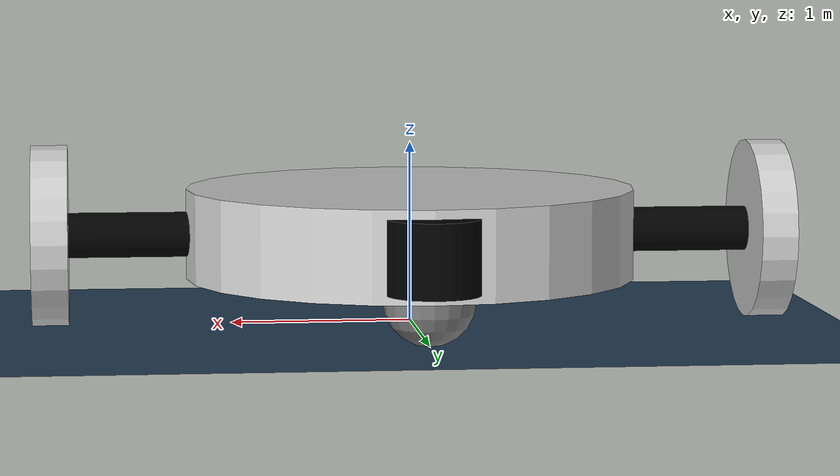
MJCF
<mujoco model="Mobile Robot">

	<asset>
		<texture name="grid" type="2d" builtin="checker" width="512" height="512" rgb1=".1 .2 .3" rgb2=".2 .3 .4"/>
		<material name="grid" texture="grid" texrepeat="1 1" texuniform="true" reflectance=".2"/>
	</asset>

	<worldbody>
		<geom name="ground" type="plane" size="0 0 0.1" material="grid"/>
		<light directional="false" active="true" pos="0 0 10" dir="0 0 -1"/>

		<body pos="0 0 0.5">
			<freejoint/>
			<geom name="mainBody" type="cylinder" size="1.25 0.25" rgba="0.8 0.8 0.8 1.0"/>
			<geom type="sphere" size="0.25" pos="0 1 -0.25"/>
			<geom type="sphere" size="0.25" pos="0 -1 -0.25"/>
			<geom type="cylinder" size="0.25" fromto="0 1.2 -0.2 0 1.2 0.2" rgba="0.0 0.0 0.0 1.0"/>

			<body pos="0 0 0">
				<joint name="rightWheel" type="hinge" pos="0 0 0" axis="-1 0 0"/>
				<geom type="cylinder" size="0.125" fromto="1 0 0 2 0 0" rgba="0 0 0 1"/>
				<geom type="cylinder" size="0.5" fromto="1.9 0 0 2.1 0 0" rgba="0.8 0.8 0.8 1.0"/>
			</body>

			<body pos="0 0 0">
				<joint name="leftWheel" type="hinge" pos ="0 0 0" axis="-1 0 0"/>
				<geom type="cylinder" size="0.125" fromto="-1 0 0 -2 0 0" rgba="0 0 0 1"/>
				<geom type="cylinder" size="0.5" fromto="-1.9 0 0 -2.1 0 0" rgba="0.8 0.8 0.8 1.0"/>
			</body>

		</body>

	</worldbody>

	<actuator>
		<motor name="rightMotor" joint="rightWheel" ctrlrange="-5000 +5000"/>
		<motor name="leftMotor"  joint="leftWheel"  ctrlrange="-5000 +5000"/>
	</actuator>

	<sensor>
		<framepos objtype="geom" objname="mainBody" reftype="geom" refname="ground"/>
	</sensor>

</mujoco>
